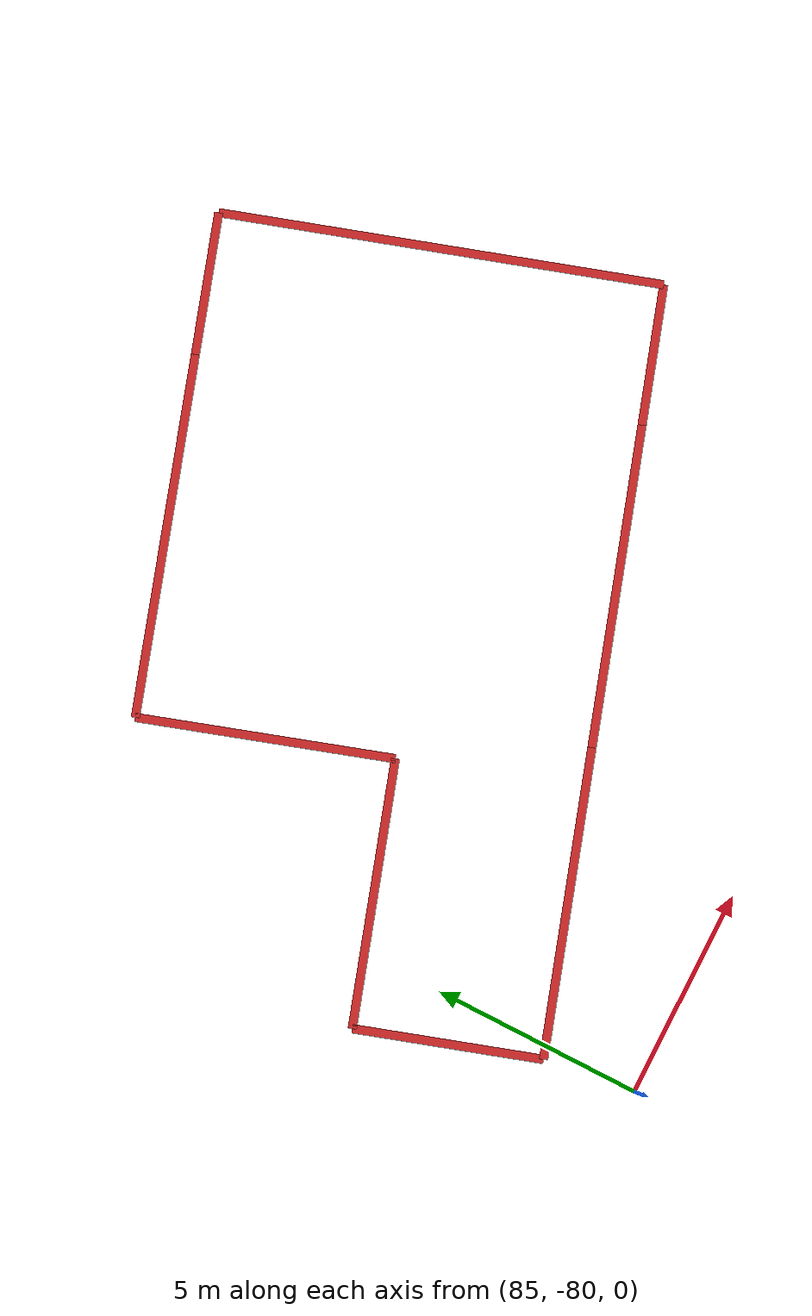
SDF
<sdf version="1.4">
 <world name="default">
  <include><uri>model://sun</uri></include>
  <model name="office_building_41054231">
   <static>true</static>
   <pose>93.0294808202 -70.8605442415 0.0 0 0 0</pose>
   <link name="office_building_41054231_0">
    <collision name="office_building_41054231_0">
     <geometry><box><size>3.33304156222 0.2 0</size></box></geometry>
    </collision>
    <visual name="office_building_41054231_0">
     <geometry><box><size>3.33304156222 0.2 0</size></box></geometry>
     <material>
      <script><uri>file://media/materials/scripts/gazebo.material</uri><name>Gazebo/Red</name></script>
     </material>
    </visual>
    <pose>7.36335046964 -1.85140275518 0 0 0 -2.82659032368</pose>
   </link>
   <link name="office_building_41054231_1">
    <collision name="office_building_41054231_1">
     <geometry><box><size>10.5033747864 0.2 0</size></box></geometry>
    </collision>
    <visual name="office_building_41054231_1">
     <geometry><box><size>10.5033747864 0.2 0</size></box></geometry>
     <material>
      <script><uri>file://media/materials/scripts/gazebo.material</uri><name>Gazebo/Red</name></script>
     </material>
    </visual>
    <pose>7.34660172998 3.66653192232 0 0 0 -1.26095690594</pose>
   </link>
   <link name="office_building_41054231_2">
    <collision name="office_building_41054231_2">
     <geometry><box><size>3.37977452094 0.2 0</size></box></geometry>
    </collision>
    <visual name="office_building_41054231_2">
     <geometry><box><size>3.37977452094 0.2 0</size></box></geometry>
     <material>
      <script><uri>file://media/materials/scripts/gazebo.material</uri><name>Gazebo/Red</name></script>
     </material>
    </visual>
    <pose>4.13857168643 8.14465961024 0 0 0 0.314958177887</pose>
   </link>
   <link name="office_building_41054231_3">
    <collision name="office_building_41054231_3">
     <geometry><box><size>8.55876327829 0.2 0</size></box></geometry>
    </collision>
    <visual name="office_building_41054231_3">
     <geometry><box><size>8.55876327829 0.2 0</size></box></geometry>
     <material>
      <script><uri>file://media/materials/scripts/gazebo.material</uri><name>Gazebo/Red</name></script>
     </material>
    </visual>
    <pose>-1.53790732239 6.29810759845 0 0 0 0.314322085517</pose>
   </link>
   <link name="office_building_41054231_4">
    <collision name="office_building_41054231_4">
     <geometry><box><size>6.07068687486 0.2 0</size></box></geometry>
    </collision>
    <visual name="office_building_41054231_4">
     <geometry><box><size>6.07068687486 0.2 0</size></box></geometry>
     <material>
      <script><uri>file://media/materials/scripts/gazebo.material</uri><name>Gazebo/Red</name></script>
     </material>
    </visual>
    <pose>-4.66799169491 2.08880047462 0 0 0 1.88553114735</pose>
   </link>
   <link name="office_building_41054231_5">
    <collision name="office_building_41054231_5">
     <geometry><box><size>6.26663716629 0.2 0</size></box></geometry>
    </collision>
    <visual name="office_building_41054231_5">
     <geometry><box><size>6.26663716629 0.2 0</size></box></geometry>
     <material>
      <script><uri>file://media/materials/scripts/gazebo.material</uri><name>Gazebo/Red</name></script>
     </material>
    </visual>
    <pose>-6.70836859743 -1.76554360536 0 0 0 0.314109790918</pose>
   </link>
   <link name="office_building_41054231_6">
    <collision name="office_building_41054231_6">
     <geometry><box><size>4.43272008338 0.2 0</size></box></geometry>
    </collision>
    <visual name="office_building_41054231_6">
     <geometry><box><size>4.43272008338 0.2 0</size></box></geometry>
     <material>
      <script><uri>file://media/materials/scripts/gazebo.material</uri><name>Gazebo/Red</name></script>
     </material>
    </visual>
    <pose>-9.00450106638 -4.84185786218 0 0 0 1.88447437386</pose>
   </link>
   <link name="office_building_41054231_7">
    <collision name="office_building_41054231_7">
     <geometry><box><size>7.23745208973 0.2 0</size></box></geometry>
    </collision>
    <visual name="office_building_41054231_7">
     <geometry><box><size>7.23745208973 0.2 0</size></box></geometry>
     <material>
      <script><uri>file://media/materials/scripts/gazebo.material</uri><name>Gazebo/Red</name></script>
     </material>
    </visual>
    <pose>-4.8791555587 -5.83137388081 0 0 0 -2.82730288428</pose>
   </link>
   <link name="office_building_41054231_8">
    <collision name="office_building_41054231_8">
     <geometry><box><size>7.5879476477 0.2 0</size></box></geometry>
    </collision>
    <visual name="office_building_41054231_8">
     <geometry><box><size>7.5879476477 0.2 0</size></box></geometry>
     <material>
      <script><uri>file://media/materials/scripts/gazebo.material</uri><name>Gazebo/Red</name></script>
     </material>
    </visual>
    <pose>2.17057060522 -3.5401994675 0 0 0 -2.82741259015</pose>
   </link>
  </model>
 </world>
</sdf>
